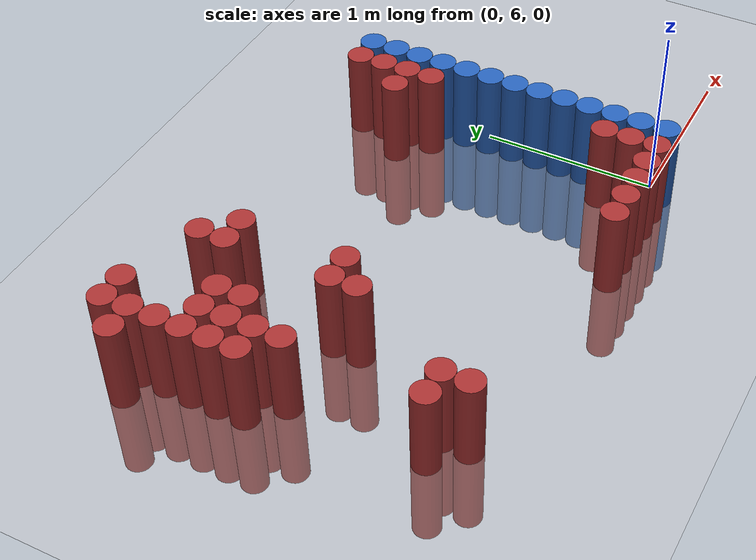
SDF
<sdf version="1.6">
 <world name="default">
  <model name="ground_plane">
   <static>1</static>
   <link name="link">
    <collision name="collision">
     <geometry><plane><normal>0 0 1</normal><size>100 100</size></plane></geometry>
     <surface><friction><ode><mu>100</mu><mu2>50</mu2></ode></friction></surface>
    </collision>
    <visual name="visual">
     <cast_shadows>0</cast_shadows>
     <geometry><plane><normal>0 0 1</normal><size>100 100</size></plane></geometry>
     <material>
      <script><uri>file://media/materials/scripts/gazebo.material</uri><name>Gazebo/Grey</name></script>
     </material>
    </visual>
   </link>
  </model>
  <model name="unit_cylinder_218">
   <static>1</static>
   <pose>-2.625000 7.725000 0.000000 0.000000 0.000000 0.000000</pose>
   <link name="link">
    <inertial>
     <mass>1</mass>
     <inertia><ixx>0.145833</ixx><ixy>0</ixy><ixz>0</ixz><iyy>0.145833</iyy><iyz>0</iyz><izz>0.125</izz></inertia>
    </inertial>
    <collision name="collision">
     <geometry><cylinder><radius>0.075000</radius><length>1</length></cylinder></geometry>
    </collision>
    <visual name="visual">
     <geometry><cylinder><radius>0.075000</radius><length>1</length></cylinder></geometry>
     <material>
      <ambient>0.648000 0.192000 0.192000 1</ambient>
      <diffuse>0.648000 0.192000 0.192000 1</diffuse>
     </material>
     <material>
      <script><name>Gazebo/Grey</name><uri>file://media/materials/scripts/gazebo.material</uri></script>
     </material>
    </visual>
   </link>
  </model>
  <model name="unit_cylinder_222">
   <static>1</static>
   <pose>-2.475000 7.125000 0.000000 0.000000 0.000000 0.000000</pose>
   <link name="link">
    <inertial>
     <mass>1</mass>
     <inertia><ixx>0.145833</ixx><ixy>0</ixy><ixz>0</ixz><iyy>0.145833</iyy><iyz>0</iyz><izz>0.125</izz></inertia>
    </inertial>
    <collision name="collision">
     <geometry><cylinder><radius>0.075000</radius><length>1</length></cylinder></geometry>
    </collision>
    <visual name="visual">
     <geometry><cylinder><radius>0.075000</radius><length>1</length></cylinder></geometry>
     <material>
      <ambient>0.648000 0.192000 0.192000 1</ambient>
      <diffuse>0.648000 0.192000 0.192000 1</diffuse>
     </material>
     <material>
      <script><name>Gazebo/Grey</name><uri>file://media/materials/scripts/gazebo.material</uri></script>
     </material>
    </visual>
   </link>
  </model>
  <model name="unit_cylinder_223">
   <static>1</static>
   <pose>-2.475000 7.275000 0.000000 0.000000 0.000000 0.000000</pose>
   <link name="link">
    <inertial>
     <mass>1</mass>
     <inertia><ixx>0.145833</ixx><ixy>0</ixy><ixz>0</ixz><iyy>0.145833</iyy><iyz>0</iyz><izz>0.125</izz></inertia>
    </inertial>
    <collision name="collision">
     <geometry><cylinder><radius>0.075000</radius><length>1</length></cylinder></geometry>
    </collision>
    <visual name="visual">
     <geometry><cylinder><radius>0.075000</radius><length>1</length></cylinder></geometry>
     <material>
      <ambient>0.648000 0.192000 0.192000 1</ambient>
      <diffuse>0.648000 0.192000 0.192000 1</diffuse>
     </material>
     <material>
      <script><name>Gazebo/Grey</name><uri>file://media/materials/scripts/gazebo.material</uri></script>
     </material>
    </visual>
   </link>
  </model>
  <model name="unit_cylinder_224">
   <static>1</static>
   <pose>-2.475000 7.425000 0.000000 0.000000 0.000000 0.000000</pose>
   <link name="link">
    <inertial>
     <mass>1</mass>
     <inertia><ixx>0.145833</ixx><ixy>0</ixy><ixz>0</ixz><iyy>0.145833</iyy><iyz>0</iyz><izz>0.125</izz></inertia>
    </inertial>
    <collision name="collision">
     <geometry><cylinder><radius>0.075000</radius><length>1</length></cylinder></geometry>
    </collision>
    <visual name="visual">
     <geometry><cylinder><radius>0.075000</radius><length>1</length></cylinder></geometry>
     <material>
      <ambient>0.648000 0.192000 0.192000 1</ambient>
      <diffuse>0.648000 0.192000 0.192000 1</diffuse>
     </material>
     <material>
      <script><name>Gazebo/Grey</name><uri>file://media/materials/scripts/gazebo.material</uri></script>
     </material>
    </visual>
   </link>
  </model>
  <model name="unit_cylinder_225">
   <static>1</static>
   <pose>-2.475000 7.575000 0.000000 0.000000 0.000000 0.000000</pose>
   <link name="link">
    <inertial>
     <mass>1</mass>
     <inertia><ixx>0.145833</ixx><ixy>0</ixy><ixz>0</ixz><iyy>0.145833</iyy><iyz>0</iyz><izz>0.125</izz></inertia>
    </inertial>
    <collision name="collision">
     <geometry><cylinder><radius>0.075000</radius><length>1</length></cylinder></geometry>
    </collision>
    <visual name="visual">
     <geometry><cylinder><radius>0.075000</radius><length>1</length></cylinder></geometry>
     <material>
      <ambient>0.648000 0.192000 0.192000 1</ambient>
      <diffuse>0.648000 0.192000 0.192000 1</diffuse>
     </material>
     <material>
      <script><name>Gazebo/Grey</name><uri>file://media/materials/scripts/gazebo.material</uri></script>
     </material>
    </visual>
   </link>
  </model>
  <model name="unit_cylinder_226">
   <static>1</static>
   <pose>-2.475000 7.725000 0.000000 0.000000 0.000000 0.000000</pose>
   <link name="link">
    <inertial>
     <mass>1</mass>
     <inertia><ixx>0.145833</ixx><ixy>0</ixy><ixz>0</ixz><iyy>0.145833</iyy><iyz>0</iyz><izz>0.125</izz></inertia>
    </inertial>
    <collision name="collision">
     <geometry><cylinder><radius>0.075000</radius><length>1</length></cylinder></geometry>
    </collision>
    <visual name="visual">
     <geometry><cylinder><radius>0.075000</radius><length>1</length></cylinder></geometry>
     <material>
      <ambient>0.648000 0.192000 0.192000 1</ambient>
      <diffuse>0.648000 0.192000 0.192000 1</diffuse>
     </material>
     <material>
      <script><name>Gazebo/Grey</name><uri>file://media/materials/scripts/gazebo.material</uri></script>
     </material>
    </visual>
   </link>
  </model>
  <model name="unit_cylinder_227">
   <static>1</static>
   <pose>-2.475000 7.875000 0.000000 0.000000 0.000000 0.000000</pose>
   <link name="link">
    <inertial>
     <mass>1</mass>
     <inertia><ixx>0.145833</ixx><ixy>0</ixy><ixz>0</ixz><iyy>0.145833</iyy><iyz>0</iyz><izz>0.125</izz></inertia>
    </inertial>
    <collision name="collision">
     <geometry><cylinder><radius>0.075000</radius><length>1</length></cylinder></geometry>
    </collision>
    <visual name="visual">
     <geometry><cylinder><radius>0.075000</radius><length>1</length></cylinder></geometry>
     <material>
      <ambient>0.648000 0.192000 0.192000 1</ambient>
      <diffuse>0.648000 0.192000 0.192000 1</diffuse>
     </material>
     <material>
      <script><name>Gazebo/Grey</name><uri>file://media/materials/scripts/gazebo.material</uri></script>
     </material>
    </visual>
   </link>
  </model>
  <model name="unit_cylinder_230">
   <static>1</static>
   <pose>-2.325000 6.225000 0.000000 0.000000 0.000000 0.000000</pose>
   <link name="link">
    <inertial>
     <mass>1</mass>
     <inertia><ixx>0.145833</ixx><ixy>0</ixy><ixz>0</ixz><iyy>0.145833</iyy><iyz>0</iyz><izz>0.125</izz></inertia>
    </inertial>
    <collision name="collision">
     <geometry><cylinder><radius>0.075000</radius><length>1</length></cylinder></geometry>
    </collision>
    <visual name="visual">
     <geometry><cylinder><radius>0.075000</radius><length>1</length></cylinder></geometry>
     <material>
      <ambient>0.648000 0.192000 0.192000 1</ambient>
      <diffuse>0.648000 0.192000 0.192000 1</diffuse>
     </material>
     <material>
      <script><name>Gazebo/Grey</name><uri>file://media/materials/scripts/gazebo.material</uri></script>
     </material>
    </visual>
   </link>
  </model>
  <model name="unit_cylinder_231">
   <static>1</static>
   <pose>-2.325000 6.975000 0.000000 0.000000 0.000000 0.000000</pose>
   <link name="link">
    <inertial>
     <mass>1</mass>
     <inertia><ixx>0.145833</ixx><ixy>0</ixy><ixz>0</ixz><iyy>0.145833</iyy><iyz>0</iyz><izz>0.125</izz></inertia>
    </inertial>
    <collision name="collision">
     <geometry><cylinder><radius>0.075000</radius><length>1</length></cylinder></geometry>
    </collision>
    <visual name="visual">
     <geometry><cylinder><radius>0.075000</radius><length>1</length></cylinder></geometry>
     <material>
      <ambient>0.648000 0.192000 0.192000 1</ambient>
      <diffuse>0.648000 0.192000 0.192000 1</diffuse>
     </material>
     <material>
      <script><name>Gazebo/Grey</name><uri>file://media/materials/scripts/gazebo.material</uri></script>
     </material>
    </visual>
   </link>
  </model>
  <model name="unit_cylinder_232">
   <static>1</static>
   <pose>-2.325000 7.125000 0.000000 0.000000 0.000000 0.000000</pose>
   <link name="link">
    <inertial>
     <mass>1</mass>
     <inertia><ixx>0.145833</ixx><ixy>0</ixy><ixz>0</ixz><iyy>0.145833</iyy><iyz>0</iyz><izz>0.125</izz></inertia>
    </inertial>
    <collision name="collision">
     <geometry><cylinder><radius>0.075000</radius><length>1</length></cylinder></geometry>
    </collision>
    <visual name="visual">
     <geometry><cylinder><radius>0.075000</radius><length>1</length></cylinder></geometry>
     <material>
      <ambient>0.648000 0.192000 0.192000 1</ambient>
      <diffuse>0.648000 0.192000 0.192000 1</diffuse>
     </material>
     <material>
      <script><name>Gazebo/Grey</name><uri>file://media/materials/scripts/gazebo.material</uri></script>
     </material>
    </visual>
   </link>
  </model>
  <model name="unit_cylinder_233">
   <static>1</static>
   <pose>-2.325000 7.275000 0.000000 0.000000 0.000000 0.000000</pose>
   <link name="link">
    <inertial>
     <mass>1</mass>
     <inertia><ixx>0.145833</ixx><ixy>0</ixy><ixz>0</ixz><iyy>0.145833</iyy><iyz>0</iyz><izz>0.125</izz></inertia>
    </inertial>
    <collision name="collision">
     <geometry><cylinder><radius>0.075000</radius><length>1</length></cylinder></geometry>
    </collision>
    <visual name="visual">
     <geometry><cylinder><radius>0.075000</radius><length>1</length></cylinder></geometry>
     <material>
      <ambient>0.648000 0.192000 0.192000 1</ambient>
      <diffuse>0.648000 0.192000 0.192000 1</diffuse>
     </material>
     <material>
      <script><name>Gazebo/Grey</name><uri>file://media/materials/scripts/gazebo.material</uri></script>
     </material>
    </visual>
   </link>
  </model>
  <model name="unit_cylinder_234">
   <static>1</static>
   <pose>-2.325000 7.425000 0.000000 0.000000 0.000000 0.000000</pose>
   <link name="link">
    <inertial>
     <mass>1</mass>
     <inertia><ixx>0.145833</ixx><ixy>0</ixy><ixz>0</ixz><iyy>0.145833</iyy><iyz>0</iyz><izz>0.125</izz></inertia>
    </inertial>
    <collision name="collision">
     <geometry><cylinder><radius>0.075000</radius><length>1</length></cylinder></geometry>
    </collision>
    <visual name="visual">
     <geometry><cylinder><radius>0.075000</radius><length>1</length></cylinder></geometry>
     <material>
      <ambient>0.648000 0.192000 0.192000 1</ambient>
      <diffuse>0.648000 0.192000 0.192000 1</diffuse>
     </material>
     <material>
      <script><name>Gazebo/Grey</name><uri>file://media/materials/scripts/gazebo.material</uri></script>
     </material>
    </visual>
   </link>
  </model>
  <model name="unit_cylinder_235">
   <static>1</static>
   <pose>-2.325000 7.875000 0.000000 0.000000 0.000000 0.000000</pose>
   <link name="link">
    <inertial>
     <mass>1</mass>
     <inertia><ixx>0.145833</ixx><ixy>0</ixy><ixz>0</ixz><iyy>0.145833</iyy><iyz>0</iyz><izz>0.125</izz></inertia>
    </inertial>
    <collision name="collision">
     <geometry><cylinder><radius>0.075000</radius><length>1</length></cylinder></geometry>
    </collision>
    <visual name="visual">
     <geometry><cylinder><radius>0.075000</radius><length>1</length></cylinder></geometry>
     <material>
      <ambient>0.648000 0.192000 0.192000 1</ambient>
      <diffuse>0.648000 0.192000 0.192000 1</diffuse>
     </material>
     <material>
      <script><name>Gazebo/Grey</name><uri>file://media/materials/scripts/gazebo.material</uri></script>
     </material>
    </visual>
   </link>
  </model>
  <model name="unit_cylinder_240">
   <static>1</static>
   <pose>-2.175000 6.075000 0.000000 0.000000 0.000000 0.000000</pose>
   <link name="link">
    <inertial>
     <mass>1</mass>
     <inertia><ixx>0.145833</ixx><ixy>0</ixy><ixz>0</ixz><iyy>0.145833</iyy><iyz>0</iyz><izz>0.125</izz></inertia>
    </inertial>
    <collision name="collision">
     <geometry><cylinder><radius>0.075000</radius><length>1</length></cylinder></geometry>
    </collision>
    <visual name="visual">
     <geometry><cylinder><radius>0.075000</radius><length>1</length></cylinder></geometry>
     <material>
      <ambient>0.648000 0.192000 0.192000 1</ambient>
      <diffuse>0.648000 0.192000 0.192000 1</diffuse>
     </material>
     <material>
      <script><name>Gazebo/Grey</name><uri>file://media/materials/scripts/gazebo.material</uri></script>
     </material>
    </visual>
   </link>
  </model>
  <model name="unit_cylinder_241">
   <static>1</static>
   <pose>-2.175000 6.225000 0.000000 0.000000 0.000000 0.000000</pose>
   <link name="link">
    <inertial>
     <mass>1</mass>
     <inertia><ixx>0.145833</ixx><ixy>0</ixy><ixz>0</ixz><iyy>0.145833</iyy><iyz>0</iyz><izz>0.125</izz></inertia>
    </inertial>
    <collision name="collision">
     <geometry><cylinder><radius>0.075000</radius><length>1</length></cylinder></geometry>
    </collision>
    <visual name="visual">
     <geometry><cylinder><radius>0.075000</radius><length>1</length></cylinder></geometry>
     <material>
      <ambient>0.648000 0.192000 0.192000 1</ambient>
      <diffuse>0.648000 0.192000 0.192000 1</diffuse>
     </material>
     <material>
      <script><name>Gazebo/Grey</name><uri>file://media/materials/scripts/gazebo.material</uri></script>
     </material>
    </visual>
   </link>
  </model>
  <model name="unit_cylinder_242">
   <static>1</static>
   <pose>-2.175000 7.275000 0.000000 0.000000 0.000000 0.000000</pose>
   <link name="link">
    <inertial>
     <mass>1</mass>
     <inertia><ixx>0.145833</ixx><ixy>0</ixy><ixz>0</ixz><iyy>0.145833</iyy><iyz>0</iyz><izz>0.125</izz></inertia>
    </inertial>
    <collision name="collision">
     <geometry><cylinder><radius>0.075000</radius><length>1</length></cylinder></geometry>
    </collision>
    <visual name="visual">
     <geometry><cylinder><radius>0.075000</radius><length>1</length></cylinder></geometry>
     <material>
      <ambient>0.648000 0.192000 0.192000 1</ambient>
      <diffuse>0.648000 0.192000 0.192000 1</diffuse>
     </material>
     <material>
      <script><name>Gazebo/Grey</name><uri>file://media/materials/scripts/gazebo.material</uri></script>
     </material>
    </visual>
   </link>
  </model>
  <model name="unit_cylinder_243">
   <static>1</static>
   <pose>-2.175000 7.425000 0.000000 0.000000 0.000000 0.000000</pose>
   <link name="link">
    <inertial>
     <mass>1</mass>
     <inertia><ixx>0.145833</ixx><ixy>0</ixy><ixz>0</ixz><iyy>0.145833</iyy><iyz>0</iyz><izz>0.125</izz></inertia>
    </inertial>
    <collision name="collision">
     <geometry><cylinder><radius>0.075000</radius><length>1</length></cylinder></geometry>
    </collision>
    <visual name="visual">
     <geometry><cylinder><radius>0.075000</radius><length>1</length></cylinder></geometry>
     <material>
      <ambient>0.648000 0.192000 0.192000 1</ambient>
      <diffuse>0.648000 0.192000 0.192000 1</diffuse>
     </material>
     <material>
      <script><name>Gazebo/Grey</name><uri>file://media/materials/scripts/gazebo.material</uri></script>
     </material>
    </visual>
   </link>
  </model>
  <model name="unit_cylinder_256">
   <static>1</static>
   <pose>-1.875000 6.825000 0.000000 0.000000 0.000000 0.000000</pose>
   <link name="link">
    <inertial>
     <mass>1</mass>
     <inertia><ixx>0.145833</ixx><ixy>0</ixy><ixz>0</ixz><iyy>0.145833</iyy><iyz>0</iyz><izz>0.125</izz></inertia>
    </inertial>
    <collision name="collision">
     <geometry><cylinder><radius>0.075000</radius><length>1</length></cylinder></geometry>
    </collision>
    <visual name="visual">
     <geometry><cylinder><radius>0.075000</radius><length>1</length></cylinder></geometry>
     <material>
      <ambient>0.648000 0.192000 0.192000 1</ambient>
      <diffuse>0.648000 0.192000 0.192000 1</diffuse>
     </material>
     <material>
      <script><name>Gazebo/Grey</name><uri>file://media/materials/scripts/gazebo.material</uri></script>
     </material>
    </visual>
   </link>
  </model>
  <model name="unit_cylinder_257">
   <static>1</static>
   <pose>-1.875000 6.975000 0.000000 0.000000 0.000000 0.000000</pose>
   <link name="link">
    <inertial>
     <mass>1</mass>
     <inertia><ixx>0.145833</ixx><ixy>0</ixy><ixz>0</ixz><iyy>0.145833</iyy><iyz>0</iyz><izz>0.125</izz></inertia>
    </inertial>
    <collision name="collision">
     <geometry><cylinder><radius>0.075000</radius><length>1</length></cylinder></geometry>
    </collision>
    <visual name="visual">
     <geometry><cylinder><radius>0.075000</radius><length>1</length></cylinder></geometry>
     <material>
      <ambient>0.648000 0.192000 0.192000 1</ambient>
      <diffuse>0.648000 0.192000 0.192000 1</diffuse>
     </material>
     <material>
      <script><name>Gazebo/Grey</name><uri>file://media/materials/scripts/gazebo.material</uri></script>
     </material>
    </visual>
   </link>
  </model>
  <model name="unit_cylinder_258">
   <static>1</static>
   <pose>-1.875000 7.575000 0.000000 0.000000 0.000000 0.000000</pose>
   <link name="link">
    <inertial>
     <mass>1</mass>
     <inertia><ixx>0.145833</ixx><ixy>0</ixy><ixz>0</ixz><iyy>0.145833</iyy><iyz>0</iyz><izz>0.125</izz></inertia>
    </inertial>
    <collision name="collision">
     <geometry><cylinder><radius>0.075000</radius><length>1</length></cylinder></geometry>
    </collision>
    <visual name="visual">
     <geometry><cylinder><radius>0.075000</radius><length>1</length></cylinder></geometry>
     <material>
      <ambient>0.648000 0.192000 0.192000 1</ambient>
      <diffuse>0.648000 0.192000 0.192000 1</diffuse>
     </material>
     <material>
      <script><name>Gazebo/Grey</name><uri>file://media/materials/scripts/gazebo.material</uri></script>
     </material>
    </visual>
   </link>
  </model>
  <model name="unit_cylinder_259">
   <static>1</static>
   <pose>-1.875000 7.725000 0.000000 0.000000 0.000000 0.000000</pose>
   <link name="link">
    <inertial>
     <mass>1</mass>
     <inertia><ixx>0.145833</ixx><ixy>0</ixy><ixz>0</ixz><iyy>0.145833</iyy><iyz>0</iyz><izz>0.125</izz></inertia>
    </inertial>
    <collision name="collision">
     <geometry><cylinder><radius>0.075000</radius><length>1</length></cylinder></geometry>
    </collision>
    <visual name="visual">
     <geometry><cylinder><radius>0.075000</radius><length>1</length></cylinder></geometry>
     <material>
      <ambient>0.648000 0.192000 0.192000 1</ambient>
      <diffuse>0.648000 0.192000 0.192000 1</diffuse>
     </material>
     <material>
      <script><name>Gazebo/Grey</name><uri>file://media/materials/scripts/gazebo.material</uri></script>
     </material>
    </visual>
   </link>
  </model>
  <model name="unit_cylinder_260">
   <static>1</static>
   <pose>-1.725000 6.975000 0.000000 0.000000 0.000000 0.000000</pose>
   <link name="link">
    <inertial>
     <mass>1</mass>
     <inertia><ixx>0.145833</ixx><ixy>0</ixy><ixz>0</ixz><iyy>0.145833</iyy><iyz>0</iyz><izz>0.125</izz></inertia>
    </inertial>
    <collision name="collision">
     <geometry><cylinder><radius>0.075000</radius><length>1</length></cylinder></geometry>
    </collision>
    <visual name="visual">
     <geometry><cylinder><radius>0.075000</radius><length>1</length></cylinder></geometry>
     <material>
      <ambient>0.648000 0.192000 0.192000 1</ambient>
      <diffuse>0.648000 0.192000 0.192000 1</diffuse>
     </material>
     <material>
      <script><name>Gazebo/Grey</name><uri>file://media/materials/scripts/gazebo.material</uri></script>
     </material>
    </visual>
   </link>
  </model>
  <model name="unit_cylinder_261">
   <static>1</static>
   <pose>-1.725000 7.575000 0.000000 0.000000 0.000000 0.000000</pose>
   <link name="link">
    <inertial>
     <mass>1</mass>
     <inertia><ixx>0.145833</ixx><ixy>0</ixy><ixz>0</ixz><iyy>0.145833</iyy><iyz>0</iyz><izz>0.125</izz></inertia>
    </inertial>
    <collision name="collision">
     <geometry><cylinder><radius>0.075000</radius><length>1</length></cylinder></geometry>
    </collision>
    <visual name="visual">
     <geometry><cylinder><radius>0.075000</radius><length>1</length></cylinder></geometry>
     <material>
      <ambient>0.648000 0.192000 0.192000 1</ambient>
      <diffuse>0.648000 0.192000 0.192000 1</diffuse>
     </material>
     <material>
      <script><name>Gazebo/Grey</name><uri>file://media/materials/scripts/gazebo.material</uri></script>
     </material>
    </visual>
   </link>
  </model>
  <model name="unit_cylinder_273">
   <static>1</static>
   <pose>-0.825000 5.925000 0.000000 0.000000 0.000000 0.000000</pose>
   <link name="link">
    <inertial>
     <mass>1</mass>
     <inertia><ixx>0.145833</ixx><ixy>0</ixy><ixz>0</ixz><iyy>0.145833</iyy><iyz>0</iyz><izz>0.125</izz></inertia>
    </inertial>
    <collision name="collision">
     <geometry><cylinder><radius>0.075000</radius><length>1</length></cylinder></geometry>
    </collision>
    <visual name="visual">
     <geometry><cylinder><radius>0.075000</radius><length>1</length></cylinder></geometry>
     <material>
      <ambient>0.648000 0.192000 0.192000 1</ambient>
      <diffuse>0.648000 0.192000 0.192000 1</diffuse>
     </material>
     <material>
      <script><name>Gazebo/Grey</name><uri>file://media/materials/scripts/gazebo.material</uri></script>
     </material>
    </visual>
   </link>
  </model>
  <model name="unit_cylinder_276">
   <static>1</static>
   <pose>-0.675000 5.925000 0.000000 0.000000 0.000000 0.000000</pose>
   <link name="link">
    <inertial>
     <mass>1</mass>
     <inertia><ixx>0.145833</ixx><ixy>0</ixy><ixz>0</ixz><iyy>0.145833</iyy><iyz>0</iyz><izz>0.125</izz></inertia>
    </inertial>
    <collision name="collision">
     <geometry><cylinder><radius>0.075000</radius><length>1</length></cylinder></geometry>
    </collision>
    <visual name="visual">
     <geometry><cylinder><radius>0.075000</radius><length>1</length></cylinder></geometry>
     <material>
      <ambient>0.648000 0.192000 0.192000 1</ambient>
      <diffuse>0.648000 0.192000 0.192000 1</diffuse>
     </material>
     <material>
      <script><name>Gazebo/Grey</name><uri>file://media/materials/scripts/gazebo.material</uri></script>
     </material>
    </visual>
   </link>
  </model>
  <model name="unit_cylinder_281">
   <static>1</static>
   <pose>-0.525000 5.925000 0.000000 0.000000 0.000000 0.000000</pose>
   <link name="link">
    <inertial>
     <mass>1</mass>
     <inertia><ixx>0.145833</ixx><ixy>0</ixy><ixz>0</ixz><iyy>0.145833</iyy><iyz>0</iyz><izz>0.125</izz></inertia>
    </inertial>
    <collision name="collision">
     <geometry><cylinder><radius>0.075000</radius><length>1</length></cylinder></geometry>
    </collision>
    <visual name="visual">
     <geometry><cylinder><radius>0.075000</radius><length>1</length></cylinder></geometry>
     <material>
      <ambient>0.648000 0.192000 0.192000 1</ambient>
      <diffuse>0.648000 0.192000 0.192000 1</diffuse>
     </material>
     <material>
      <script><name>Gazebo/Grey</name><uri>file://media/materials/scripts/gazebo.material</uri></script>
     </material>
    </visual>
   </link>
  </model>
  <model name="unit_cylinder_287">
   <static>1</static>
   <pose>-0.375000 5.925000 0.000000 0.000000 0.000000 0.000000</pose>
   <link name="link">
    <inertial>
     <mass>1</mass>
     <inertia><ixx>0.145833</ixx><ixy>0</ixy><ixz>0</ixz><iyy>0.145833</iyy><iyz>0</iyz><izz>0.125</izz></inertia>
    </inertial>
    <collision name="collision">
     <geometry><cylinder><radius>0.075000</radius><length>1</length></cylinder></geometry>
    </collision>
    <visual name="visual">
     <geometry><cylinder><radius>0.075000</radius><length>1</length></cylinder></geometry>
     <material>
      <ambient>0.648000 0.192000 0.192000 1</ambient>
      <diffuse>0.648000 0.192000 0.192000 1</diffuse>
     </material>
     <material>
      <script><name>Gazebo/Grey</name><uri>file://media/materials/scripts/gazebo.material</uri></script>
     </material>
    </visual>
   </link>
  </model>
  <model name="unit_cylinder_288">
   <static>1</static>
   <pose>-0.375000 7.425000 0.000000 0.000000 0.000000 0.000000</pose>
   <link name="link">
    <inertial>
     <mass>1</mass>
     <inertia><ixx>0.145833</ixx><ixy>0</ixy><ixz>0</ixz><iyy>0.145833</iyy><iyz>0</iyz><izz>0.125</izz></inertia>
    </inertial>
    <collision name="collision">
     <geometry><cylinder><radius>0.075000</radius><length>1</length></cylinder></geometry>
    </collision>
    <visual name="visual">
     <geometry><cylinder><radius>0.075000</radius><length>1</length></cylinder></geometry>
     <material>
      <ambient>0.648000 0.192000 0.192000 1</ambient>
      <diffuse>0.648000 0.192000 0.192000 1</diffuse>
     </material>
     <material>
      <script><name>Gazebo/Grey</name><uri>file://media/materials/scripts/gazebo.material</uri></script>
     </material>
    </visual>
   </link>
  </model>
  <model name="unit_cylinder_293">
   <static>1</static>
   <pose>-0.225000 5.925000 0.000000 0.000000 0.000000 0.000000</pose>
   <link name="link">
    <inertial>
     <mass>1</mass>
     <inertia><ixx>0.145833</ixx><ixy>0</ixy><ixz>0</ixz><iyy>0.145833</iyy><iyz>0</iyz><izz>0.125</izz></inertia>
    </inertial>
    <collision name="collision">
     <geometry><cylinder><radius>0.075000</radius><length>1</length></cylinder></geometry>
    </collision>
    <visual name="visual">
     <geometry><cylinder><radius>0.075000</radius><length>1</length></cylinder></geometry>
     <material>
      <ambient>0.648000 0.192000 0.192000 1</ambient>
      <diffuse>0.648000 0.192000 0.192000 1</diffuse>
     </material>
     <material>
      <script><name>Gazebo/Grey</name><uri>file://media/materials/scripts/gazebo.material</uri></script>
     </material>
    </visual>
   </link>
  </model>
  <model name="unit_cylinder_294">
   <static>1</static>
   <pose>-0.225000 6.075000 0.000000 0.000000 0.000000 0.000000</pose>
   <link name="link">
    <inertial>
     <mass>1</mass>
     <inertia><ixx>0.145833</ixx><ixy>0</ixy><ixz>0</ixz><iyy>0.145833</iyy><iyz>0</iyz><izz>0.125</izz></inertia>
    </inertial>
    <collision name="collision">
     <geometry><cylinder><radius>0.075000</radius><length>1</length></cylinder></geometry>
    </collision>
    <visual name="visual">
     <geometry><cylinder><radius>0.075000</radius><length>1</length></cylinder></geometry>
     <material>
      <ambient>0.648000 0.192000 0.192000 1</ambient>
      <diffuse>0.648000 0.192000 0.192000 1</diffuse>
     </material>
     <material>
      <script><name>Gazebo/Grey</name><uri>file://media/materials/scripts/gazebo.material</uri></script>
     </material>
    </visual>
   </link>
  </model>
  <model name="unit_cylinder_295">
   <static>1</static>
   <pose>-0.225000 6.225000 0.000000 0.000000 0.000000 0.000000</pose>
   <link name="link">
    <inertial>
     <mass>1</mass>
     <inertia><ixx>0.145833</ixx><ixy>0</ixy><ixz>0</ixz><iyy>0.145833</iyy><iyz>0</iyz><izz>0.125</izz></inertia>
    </inertial>
    <collision name="collision">
     <geometry><cylinder><radius>0.075000</radius><length>1</length></cylinder></geometry>
    </collision>
    <visual name="visual">
     <geometry><cylinder><radius>0.075000</radius><length>1</length></cylinder></geometry>
     <material>
      <ambient>0.648000 0.192000 0.192000 1</ambient>
      <diffuse>0.648000 0.192000 0.192000 1</diffuse>
     </material>
     <material>
      <script><name>Gazebo/Grey</name><uri>file://media/materials/scripts/gazebo.material</uri></script>
     </material>
    </visual>
   </link>
  </model>
  <model name="unit_cylinder_296">
   <static>1</static>
   <pose>-0.225000 7.275000 0.000000 0.000000 0.000000 0.000000</pose>
   <link name="link">
    <inertial>
     <mass>1</mass>
     <inertia><ixx>0.145833</ixx><ixy>0</ixy><ixz>0</ixz><iyy>0.145833</iyy><iyz>0</iyz><izz>0.125</izz></inertia>
    </inertial>
    <collision name="collision">
     <geometry><cylinder><radius>0.075000</radius><length>1</length></cylinder></geometry>
    </collision>
    <visual name="visual">
     <geometry><cylinder><radius>0.075000</radius><length>1</length></cylinder></geometry>
     <material>
      <ambient>0.648000 0.192000 0.192000 1</ambient>
      <diffuse>0.648000 0.192000 0.192000 1</diffuse>
     </material>
     <material>
      <script><name>Gazebo/Grey</name><uri>file://media/materials/scripts/gazebo.material</uri></script>
     </material>
    </visual>
   </link>
  </model>
  <model name="unit_cylinder_297">
   <static>1</static>
   <pose>-0.225000 7.425000 0.000000 0.000000 0.000000 0.000000</pose>
   <link name="link">
    <inertial>
     <mass>1</mass>
     <inertia><ixx>0.145833</ixx><ixy>0</ixy><ixz>0</ixz><iyy>0.145833</iyy><iyz>0</iyz><izz>0.125</izz></inertia>
    </inertial>
    <collision name="collision">
     <geometry><cylinder><radius>0.075000</radius><length>1</length></cylinder></geometry>
    </collision>
    <visual name="visual">
     <geometry><cylinder><radius>0.075000</radius><length>1</length></cylinder></geometry>
     <material>
      <ambient>0.648000 0.192000 0.192000 1</ambient>
      <diffuse>0.648000 0.192000 0.192000 1</diffuse>
     </material>
     <material>
      <script><name>Gazebo/Grey</name><uri>file://media/materials/scripts/gazebo.material</uri></script>
     </material>
    </visual>
   </link>
  </model>
  <model name="unit_cylinder_298">
   <static>1</static>
   <pose>-0.225000 7.575000 0.000000 0.000000 0.000000 0.000000</pose>
   <link name="link">
    <inertial>
     <mass>1</mass>
     <inertia><ixx>0.145833</ixx><ixy>0</ixy><ixz>0</ixz><iyy>0.145833</iyy><iyz>0</iyz><izz>0.125</izz></inertia>
    </inertial>
    <collision name="collision">
     <geometry><cylinder><radius>0.075000</radius><length>1</length></cylinder></geometry>
    </collision>
    <visual name="visual">
     <geometry><cylinder><radius>0.075000</radius><length>1</length></cylinder></geometry>
     <material>
      <ambient>0.648000 0.192000 0.192000 1</ambient>
      <diffuse>0.648000 0.192000 0.192000 1</diffuse>
     </material>
     <material>
      <script><name>Gazebo/Grey</name><uri>file://media/materials/scripts/gazebo.material</uri></script>
     </material>
    </visual>
   </link>
  </model>
  <model name="unit_cylinder_299">
   <static>1</static>
   <pose>-0.225000 7.725000 0.000000 0.000000 0.000000 0.000000</pose>
   <link name="link">
    <inertial>
     <mass>1</mass>
     <inertia><ixx>0.145833</ixx><ixy>0</ixy><ixz>0</ixz><iyy>0.145833</iyy><iyz>0</iyz><izz>0.125</izz></inertia>
    </inertial>
    <collision name="collision">
     <geometry><cylinder><radius>0.075000</radius><length>1</length></cylinder></geometry>
    </collision>
    <visual name="visual">
     <geometry><cylinder><radius>0.075000</radius><length>1</length></cylinder></geometry>
     <material>
      <ambient>0.648000 0.192000 0.192000 1</ambient>
      <diffuse>0.648000 0.192000 0.192000 1</diffuse>
     </material>
     <material>
      <script><name>Gazebo/Grey</name><uri>file://media/materials/scripts/gazebo.material</uri></script>
     </material>
    </visual>
   </link>
  </model>
  <model name="unit_cylinder_312">
   <static>1</static>
   <pose>-0.075000 5.925000 0.000000 0.000000 0.000000 0.000000</pose>
   <link name="link">
    <inertial>
     <mass>1</mass>
     <inertia><ixx>0.145833</ixx><ixy>0</ixy><ixz>0</ixz><iyy>0.145833</iyy><iyz>0</iyz><izz>0.125</izz></inertia>
    </inertial>
    <collision name="collision">
     <geometry><cylinder><radius>0.075000</radius><length>1</length></cylinder></geometry>
    </collision>
    <visual name="visual">
     <geometry><cylinder><radius>0.075000</radius><length>1</length></cylinder></geometry>
     <material>
      <ambient>0.152000 0.379000 0.720000 1</ambient>
      <diffuse>0.152000 0.379000 0.720000 1</diffuse>
     </material>
     <material>
      <script><name>Gazebo/Grey</name><uri>file://media/materials/scripts/gazebo.material</uri></script>
     </material>
    </visual>
   </link>
  </model>
  <model name="unit_cylinder_313">
   <static>1</static>
   <pose>-0.075000 6.075000 0.000000 0.000000 0.000000 0.000000</pose>
   <link name="link">
    <inertial>
     <mass>1</mass>
     <inertia><ixx>0.145833</ixx><ixy>0</ixy><ixz>0</ixz><iyy>0.145833</iyy><iyz>0</iyz><izz>0.125</izz></inertia>
    </inertial>
    <collision name="collision">
     <geometry><cylinder><radius>0.075000</radius><length>1</length></cylinder></geometry>
    </collision>
    <visual name="visual">
     <geometry><cylinder><radius>0.075000</radius><length>1</length></cylinder></geometry>
     <material>
      <ambient>0.152000 0.379000 0.720000 1</ambient>
      <diffuse>0.152000 0.379000 0.720000 1</diffuse>
     </material>
     <material>
      <script><name>Gazebo/Grey</name><uri>file://media/materials/scripts/gazebo.material</uri></script>
     </material>
    </visual>
   </link>
  </model>
  <model name="unit_cylinder_314">
   <static>1</static>
   <pose>-0.075000 6.225000 0.000000 0.000000 0.000000 0.000000</pose>
   <link name="link">
    <inertial>
     <mass>1</mass>
     <inertia><ixx>0.145833</ixx><ixy>0</ixy><ixz>0</ixz><iyy>0.145833</iyy><iyz>0</iyz><izz>0.125</izz></inertia>
    </inertial>
    <collision name="collision">
     <geometry><cylinder><radius>0.075000</radius><length>1</length></cylinder></geometry>
    </collision>
    <visual name="visual">
     <geometry><cylinder><radius>0.075000</radius><length>1</length></cylinder></geometry>
     <material>
      <ambient>0.152000 0.379000 0.720000 1</ambient>
      <diffuse>0.152000 0.379000 0.720000 1</diffuse>
     </material>
     <material>
      <script><name>Gazebo/Grey</name><uri>file://media/materials/scripts/gazebo.material</uri></script>
     </material>
    </visual>
   </link>
  </model>
  <model name="unit_cylinder_315">
   <static>1</static>
   <pose>-0.075000 6.375000 0.000000 0.000000 0.000000 0.000000</pose>
   <link name="link">
    <inertial>
     <mass>1</mass>
     <inertia><ixx>0.145833</ixx><ixy>0</ixy><ixz>0</ixz><iyy>0.145833</iyy><iyz>0</iyz><izz>0.125</izz></inertia>
    </inertial>
    <collision name="collision">
     <geometry><cylinder><radius>0.075000</radius><length>1</length></cylinder></geometry>
    </collision>
    <visual name="visual">
     <geometry><cylinder><radius>0.075000</radius><length>1</length></cylinder></geometry>
     <material>
      <ambient>0.152000 0.379000 0.720000 1</ambient>
      <diffuse>0.152000 0.379000 0.720000 1</diffuse>
     </material>
     <material>
      <script><name>Gazebo/Grey</name><uri>file://media/materials/scripts/gazebo.material</uri></script>
     </material>
    </visual>
   </link>
  </model>
  <model name="unit_cylinder_316">
   <static>1</static>
   <pose>-0.075000 6.525000 0.000000 0.000000 0.000000 0.000000</pose>
   <link name="link">
    <inertial>
     <mass>1</mass>
     <inertia><ixx>0.145833</ixx><ixy>0</ixy><ixz>0</ixz><iyy>0.145833</iyy><iyz>0</iyz><izz>0.125</izz></inertia>
    </inertial>
    <collision name="collision">
     <geometry><cylinder><radius>0.075000</radius><length>1</length></cylinder></geometry>
    </collision>
    <visual name="visual">
     <geometry><cylinder><radius>0.075000</radius><length>1</length></cylinder></geometry>
     <material>
      <ambient>0.152000 0.379000 0.720000 1</ambient>
      <diffuse>0.152000 0.379000 0.720000 1</diffuse>
     </material>
     <material>
      <script><name>Gazebo/Grey</name><uri>file://media/materials/scripts/gazebo.material</uri></script>
     </material>
    </visual>
   </link>
  </model>
  <model name="unit_cylinder_317">
   <static>1</static>
   <pose>-0.075000 6.675000 0.000000 0.000000 0.000000 0.000000</pose>
   <link name="link">
    <inertial>
     <mass>1</mass>
     <inertia><ixx>0.145833</ixx><ixy>0</ixy><ixz>0</ixz><iyy>0.145833</iyy><iyz>0</iyz><izz>0.125</izz></inertia>
    </inertial>
    <collision name="collision">
     <geometry><cylinder><radius>0.075000</radius><length>1</length></cylinder></geometry>
    </collision>
    <visual name="visual">
     <geometry><cylinder><radius>0.075000</radius><length>1</length></cylinder></geometry>
     <material>
      <ambient>0.152000 0.379000 0.720000 1</ambient>
      <diffuse>0.152000 0.379000 0.720000 1</diffuse>
     </material>
     <material>
      <script><name>Gazebo/Grey</name><uri>file://media/materials/scripts/gazebo.material</uri></script>
     </material>
    </visual>
   </link>
  </model>
  <model name="unit_cylinder_318">
   <static>1</static>
   <pose>-0.075000 6.825000 0.000000 0.000000 0.000000 0.000000</pose>
   <link name="link">
    <inertial>
     <mass>1</mass>
     <inertia><ixx>0.145833</ixx><ixy>0</ixy><ixz>0</ixz><iyy>0.145833</iyy><iyz>0</iyz><izz>0.125</izz></inertia>
    </inertial>
    <collision name="collision">
     <geometry><cylinder><radius>0.075000</radius><length>1</length></cylinder></geometry>
    </collision>
    <visual name="visual">
     <geometry><cylinder><radius>0.075000</radius><length>1</length></cylinder></geometry>
     <material>
      <ambient>0.152000 0.379000 0.720000 1</ambient>
      <diffuse>0.152000 0.379000 0.720000 1</diffuse>
     </material>
     <material>
      <script><name>Gazebo/Grey</name><uri>file://media/materials/scripts/gazebo.material</uri></script>
     </material>
    </visual>
   </link>
  </model>
  <model name="unit_cylinder_319">
   <static>1</static>
   <pose>-0.075000 6.975000 0.000000 0.000000 0.000000 0.000000</pose>
   <link name="link">
    <inertial>
     <mass>1</mass>
     <inertia><ixx>0.145833</ixx><ixy>0</ixy><ixz>0</ixz><iyy>0.145833</iyy><iyz>0</iyz><izz>0.125</izz></inertia>
    </inertial>
    <collision name="collision">
     <geometry><cylinder><radius>0.075000</radius><length>1</length></cylinder></geometry>
    </collision>
    <visual name="visual">
     <geometry><cylinder><radius>0.075000</radius><length>1</length></cylinder></geometry>
     <material>
      <ambient>0.152000 0.379000 0.720000 1</ambient>
      <diffuse>0.152000 0.379000 0.720000 1</diffuse>
     </material>
     <material>
      <script><name>Gazebo/Grey</name><uri>file://media/materials/scripts/gazebo.material</uri></script>
     </material>
    </visual>
   </link>
  </model>
  <model name="unit_cylinder_320">
   <static>1</static>
   <pose>-0.075000 7.125000 0.000000 0.000000 0.000000 0.000000</pose>
   <link name="link">
    <inertial>
     <mass>1</mass>
     <inertia><ixx>0.145833</ixx><ixy>0</ixy><ixz>0</ixz><iyy>0.145833</iyy><iyz>0</iyz><izz>0.125</izz></inertia>
    </inertial>
    <collision name="collision">
     <geometry><cylinder><radius>0.075000</radius><length>1</length></cylinder></geometry>
    </collision>
    <visual name="visual">
     <geometry><cylinder><radius>0.075000</radius><length>1</length></cylinder></geometry>
     <material>
      <ambient>0.152000 0.379000 0.720000 1</ambient>
      <diffuse>0.152000 0.379000 0.720000 1</diffuse>
     </material>
     <material>
      <script><name>Gazebo/Grey</name><uri>file://media/materials/scripts/gazebo.material</uri></script>
     </material>
    </visual>
   </link>
  </model>
  <model name="unit_cylinder_321">
   <static>1</static>
   <pose>-0.075000 7.275000 0.000000 0.000000 0.000000 0.000000</pose>
   <link name="link">
    <inertial>
     <mass>1</mass>
     <inertia><ixx>0.145833</ixx><ixy>0</ixy><ixz>0</ixz><iyy>0.145833</iyy><iyz>0</iyz><izz>0.125</izz></inertia>
    </inertial>
    <collision name="collision">
     <geometry><cylinder><radius>0.075000</radius><length>1</length></cylinder></geometry>
    </collision>
    <visual name="visual">
     <geometry><cylinder><radius>0.075000</radius><length>1</length></cylinder></geometry>
     <material>
      <ambient>0.152000 0.379000 0.720000 1</ambient>
      <diffuse>0.152000 0.379000 0.720000 1</diffuse>
     </material>
     <material>
      <script><name>Gazebo/Grey</name><uri>file://media/materials/scripts/gazebo.material</uri></script>
     </material>
    </visual>
   </link>
  </model>
  <model name="unit_cylinder_322">
   <static>1</static>
   <pose>-0.075000 7.425000 0.000000 0.000000 0.000000 0.000000</pose>
   <link name="link">
    <inertial>
     <mass>1</mass>
     <inertia><ixx>0.145833</ixx><ixy>0</ixy><ixz>0</ixz><iyy>0.145833</iyy><iyz>0</iyz><izz>0.125</izz></inertia>
    </inertial>
    <collision name="collision">
     <geometry><cylinder><radius>0.075000</radius><length>1</length></cylinder></geometry>
    </collision>
    <visual name="visual">
     <geometry><cylinder><radius>0.075000</radius><length>1</length></cylinder></geometry>
     <material>
      <ambient>0.152000 0.379000 0.720000 1</ambient>
      <diffuse>0.152000 0.379000 0.720000 1</diffuse>
     </material>
     <material>
      <script><name>Gazebo/Grey</name><uri>file://media/materials/scripts/gazebo.material</uri></script>
     </material>
    </visual>
   </link>
  </model>
  <model name="unit_cylinder_323">
   <static>1</static>
   <pose>-0.075000 7.575000 0.000000 0.000000 0.000000 0.000000</pose>
   <link name="link">
    <inertial>
     <mass>1</mass>
     <inertia><ixx>0.145833</ixx><ixy>0</ixy><ixz>0</ixz><iyy>0.145833</iyy><iyz>0</iyz><izz>0.125</izz></inertia>
    </inertial>
    <collision name="collision">
     <geometry><cylinder><radius>0.075000</radius><length>1</length></cylinder></geometry>
    </collision>
    <visual name="visual">
     <geometry><cylinder><radius>0.075000</radius><length>1</length></cylinder></geometry>
     <material>
      <ambient>0.152000 0.379000 0.720000 1</ambient>
      <diffuse>0.152000 0.379000 0.720000 1</diffuse>
     </material>
     <material>
      <script><name>Gazebo/Grey</name><uri>file://media/materials/scripts/gazebo.material</uri></script>
     </material>
    </visual>
   </link>
  </model>
  <model name="unit_cylinder_324">
   <static>1</static>
   <pose>-0.075000 7.725000 0.000000 0.000000 0.000000 0.000000</pose>
   <link name="link">
    <inertial>
     <mass>1</mass>
     <inertia><ixx>0.145833</ixx><ixy>0</ixy><ixz>0</ixz><iyy>0.145833</iyy><iyz>0</iyz><izz>0.125</izz></inertia>
    </inertial>
    <collision name="collision">
     <geometry><cylinder><radius>0.075000</radius><length>1</length></cylinder></geometry>
    </collision>
    <visual name="visual">
     <geometry><cylinder><radius>0.075000</radius><length>1</length></cylinder></geometry>
     <material>
      <ambient>0.152000 0.379000 0.720000 1</ambient>
      <diffuse>0.152000 0.379000 0.720000 1</diffuse>
     </material>
     <material>
      <script><name>Gazebo/Grey</name><uri>file://media/materials/scripts/gazebo.material</uri></script>
     </material>
    </visual>
   </link>
  </model>
 </world>
</sdf>
